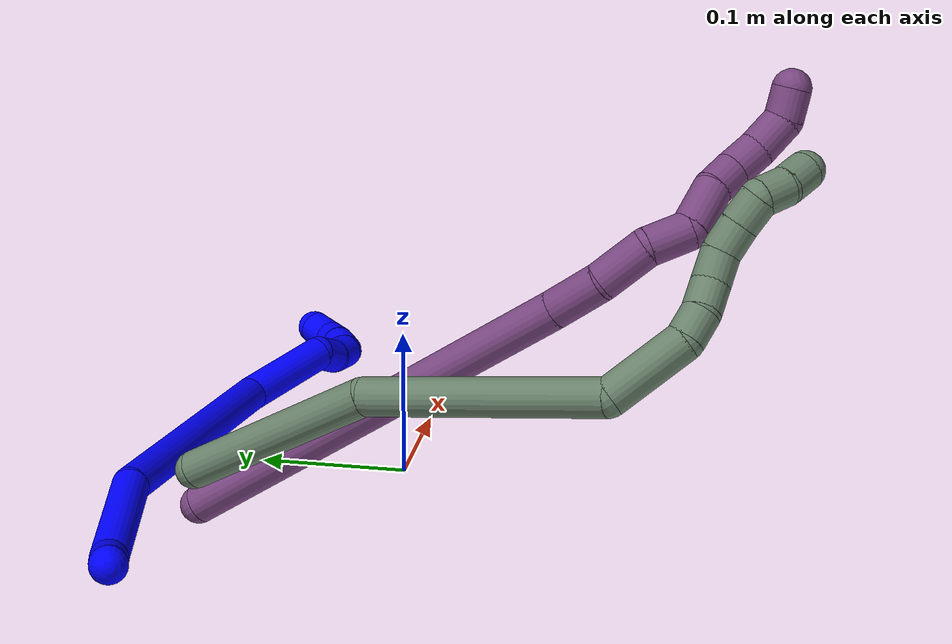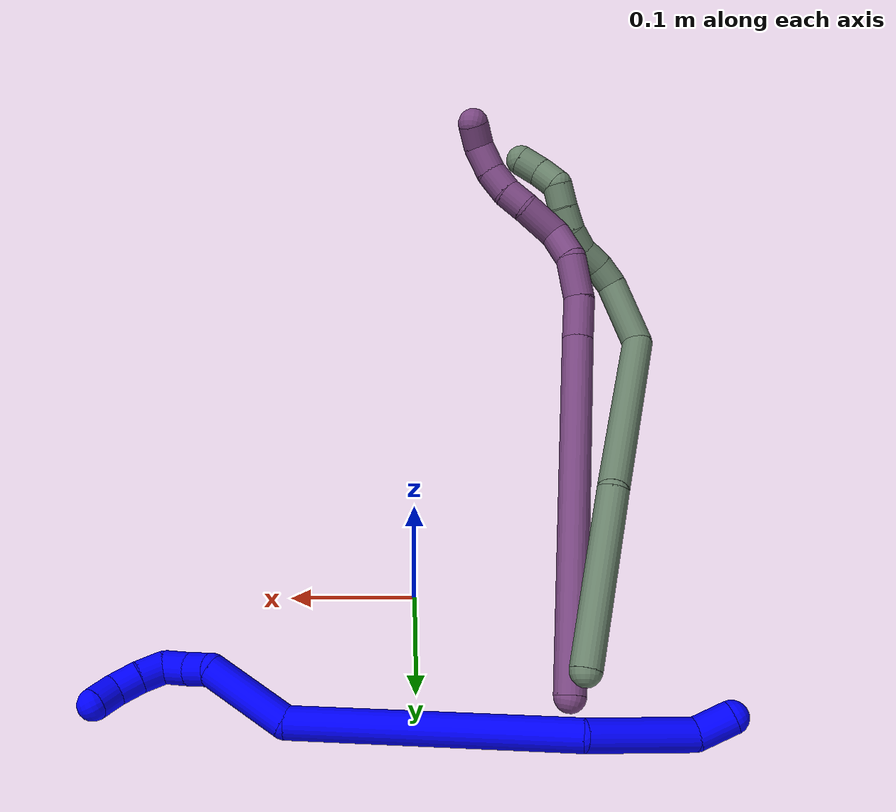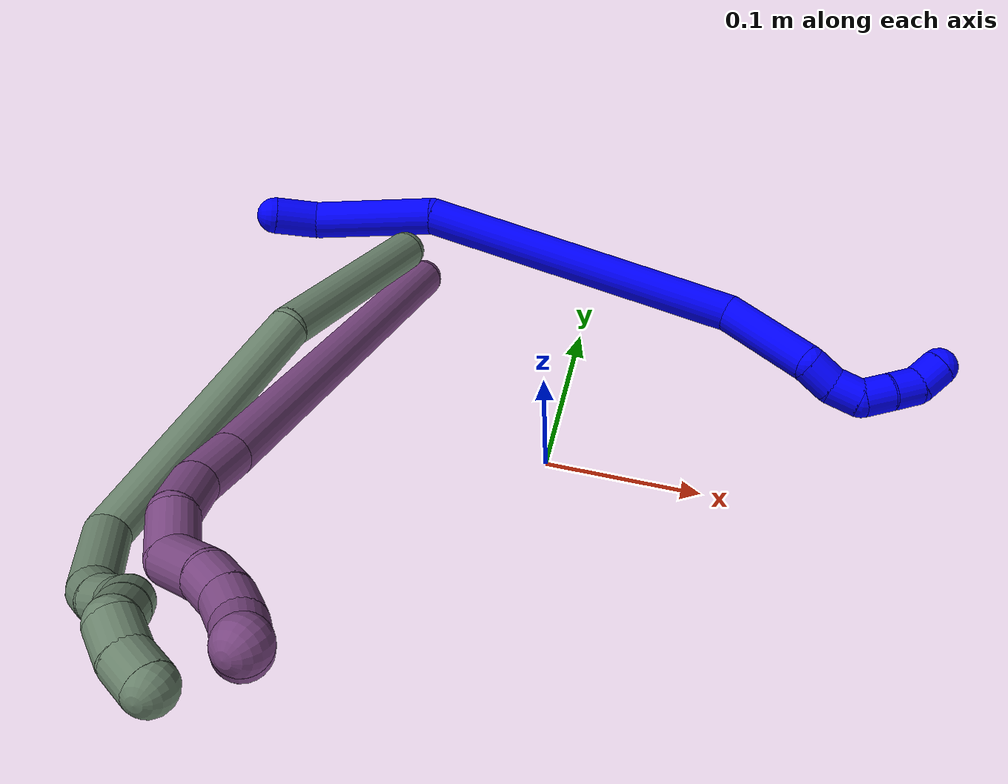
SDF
<sdf version="1.7">
 <world name="default">
  <model name="1">
   <static>0</static>
   <link name="1">
    <collision name="collision-cylinder-e_1_1_4">
     <pose>0.000406 -0.000487 -0.014796 3.10866 0.027416 1.38844</pose>
     <geometry><cylinder><radius>0.0125</radius><length>0.029619</length></cylinder></geometry>
     <surface>
      <friction><ode><mu>1.16</mu><mu2>1.16</mu2><slip1>0</slip1><slip2>0</slip2></ode></friction>
      <contact><ode><kp>1e+06</kp><kd>1</kd><max_vel>0</max_vel><min_depth>0.001</min_depth></ode></contact>
     </surface>
    </collision>
    <visual name="visual-cylinder-e_1_1_4">
     <pose>0.000406 -0.000487 -0.014796 3.10866 0.027416 1.38844</pose>
     <geometry><cylinder><radius>0.0125</radius><length>0.029619</length></cylinder></geometry>
     <material><ambient>0 0 1 1</ambient></material>
    </visual>
    <collision name="collision-cylinder-e_2_4_5">
     <pose>0.020417 0.004562 -0.066507 -2.99271 0.483622 -2.55431</pose>
     <geometry><cylinder><radius>0.0125</radius><length>0.084326</length></cylinder></geometry>
     <surface>
      <friction><ode><mu>1.16</mu><mu2>1.16</mu2><slip1>0</slip1><slip2>0</slip2></ode></friction>
      <contact><ode><kp>1e+06</kp><kd>1</kd><max_vel>0</max_vel><min_depth>0.001</min_depth></ode></contact>
     </surface>
    </collision>
    <visual name="visual-cylinder-e_2_4_5">
     <pose>0.020417 0.004562 -0.066507 -2.99271 0.483622 -2.55431</pose>
     <geometry><cylinder><radius>0.0125</radius><length>0.084326</length></cylinder></geometry>
     <material><ambient>0 0 1 1</ambient></material>
    </visual>
    <collision name="collision-cylinder-e_3_5_6">
     <pose>0.08765 -0.012303 -0.197232 2.90718 0.458686 2.20732</pose>
     <geometry><cylinder><radius>0.0125</radius><length>0.215134</length></cylinder></geometry>
     <surface>
      <friction><ode><mu>1.16</mu><mu2>1.16</mu2><slip1>0</slip1><slip2>0</slip2></ode></friction>
      <contact><ode><kp>1e+06</kp><kd>1</kd><max_vel>0</max_vel><min_depth>0.001</min_depth></ode></contact>
     </surface>
    </collision>
    <visual name="visual-cylinder-e_3_5_6">
     <pose>0.08765 -0.012303 -0.197232 2.90718 0.458686 2.20732</pose>
     <geometry><cylinder><radius>0.0125</radius><length>0.215134</length></cylinder></geometry>
     <material><ambient>0 0 1 1</ambient></material>
    </visual>
    <collision name="collision-cylinder-e_4_6_7">
     <pose>0.163222 -0.046512 -0.308187 2.53851 0.930559 2.03229</pose>
     <geometry><cylinder><radius>0.0125</radius><length>0.069691</length></cylinder></geometry>
     <surface>
      <friction><ode><mu>1.16</mu><mu2>1.16</mu2><slip1>0</slip1><slip2>0</slip2></ode></friction>
      <contact><ode><kp>1e+06</kp><kd>1</kd><max_vel>0</max_vel><min_depth>0.001</min_depth></ode></contact>
     </surface>
    </collision>
    <visual name="visual-cylinder-e_4_6_7">
     <pose>0.163222 -0.046512 -0.308187 2.53851 0.930559 2.03229</pose>
     <geometry><cylinder><radius>0.0125</radius><length>0.069691</length></cylinder></geometry>
     <material><ambient>0 0 1 1</ambient></material>
    </visual>
    <collision name="collision-cylinder-e_5_7_8">
     <pose>0.194168 -0.064505 -0.333002 2.46289 0.295678 0.798445</pose>
     <geometry><cylinder><radius>0.0125</radius><length>0.020603</length></cylinder></geometry>
     <surface>
      <friction><ode><mu>1.16</mu><mu2>1.16</mu2><slip1>0</slip1><slip2>0</slip2></ode></friction>
      <contact><ode><kp>1e+06</kp><kd>1</kd><max_vel>0</max_vel><min_depth>0.001</min_depth></ode></contact>
     </surface>
    </collision>
    <visual name="visual-cylinder-e_5_7_8">
     <pose>0.194168 -0.064505 -0.333002 2.46289 0.295678 0.798445</pose>
     <geometry><cylinder><radius>0.0125</radius><length>0.020603</length></cylinder></geometry>
     <material><ambient>0 0 1 1</ambient></material>
    </visual>
    <collision name="collision-cylinder-e_6_8_9">
     <pose>0.201821 -0.073927 -0.349221 2.77975 0.470676 1.83821</pose>
     <geometry><cylinder><radius>0.0125</radius><length>0.020512</length></cylinder></geometry>
     <surface>
      <friction><ode><mu>1.16</mu><mu2>1.16</mu2><slip1>0</slip1><slip2>0</slip2></ode></friction>
      <contact><ode><kp>1e+06</kp><kd>1</kd><max_vel>0</max_vel><min_depth>0.001</min_depth></ode></contact>
     </surface>
    </collision>
    <visual name="visual-cylinder-e_6_8_9">
     <pose>0.201821 -0.073927 -0.349221 2.77975 0.470676 1.83821</pose>
     <geometry><cylinder><radius>0.0125</radius><length>0.020512</length></cylinder></geometry>
     <material><ambient>0 0 1 1</ambient></material>
    </visual>
    <collision name="collision-cylinder-e_7_9_10">
     <pose>0.207519 -0.074418 -0.367369 -2.86305 0.104484 -0.71406</pose>
     <geometry><cylinder><radius>0.0125</radius><length>0.020077</length></cylinder></geometry>
     <surface>
      <friction><ode><mu>1.16</mu><mu2>1.16</mu2><slip1>0</slip1><slip2>0</slip2></ode></friction>
      <contact><ode><kp>1e+06</kp><kd>1</kd><max_vel>0</max_vel><min_depth>0.001</min_depth></ode></contact>
     </surface>
    </collision>
    <visual name="visual-cylinder-e_7_9_10">
     <pose>0.207519 -0.074418 -0.367369 -2.86305 0.104484 -0.71406</pose>
     <geometry><cylinder><radius>0.0125</radius><length>0.020077</length></cylinder></geometry>
     <material><ambient>0 0 1 1</ambient></material>
    </visual>
    <collision name="collision-cylinder-e_8_10_11">
     <pose>0.208477 -0.069186 -0.386668 -2.89065 -0.008925 0.070733</pose>
     <geometry><cylinder><radius>0.0125</radius><length>0.020028</length></cylinder></geometry>
     <surface>
      <friction><ode><mu>1.16</mu><mu2>1.16</mu2><slip1>0</slip1><slip2>0</slip2></ode></friction>
      <contact><ode><kp>1e+06</kp><kd>1</kd><max_vel>0</max_vel><min_depth>0.001</min_depth></ode></contact>
     </surface>
    </collision>
    <visual name="visual-cylinder-e_8_10_11">
     <pose>0.208477 -0.069186 -0.386668 -2.89065 -0.008925 0.070733</pose>
     <geometry><cylinder><radius>0.0125</radius><length>0.020028</length></cylinder></geometry>
     <material><ambient>0 0 1 1</ambient></material>
    </visual>
    <collision name="collision-cylinder-e_9_11_2">
     <pose>0.207745 -0.060261 -0.403998 -2.44067 -0.06426 0.175401</pose>
     <geometry><cylinder><radius>0.0125</radius><length>0.020009</length></cylinder></geometry>
     <surface>
      <friction><ode><mu>1.16</mu><mu2>1.16</mu2><slip1>0</slip1><slip2>0</slip2></ode></friction>
      <contact><ode><kp>1e+06</kp><kd>1</kd><max_vel>0</max_vel><min_depth>0.001</min_depth></ode></contact>
     </surface>
    </collision>
    <visual name="visual-cylinder-e_9_11_2">
     <pose>0.207745 -0.060261 -0.403998 -2.44067 -0.06426 0.175401</pose>
     <geometry><cylinder><radius>0.0125</radius><length>0.020009</length></cylinder></geometry>
     <material><ambient>0 0 1 1</ambient></material>
    </visual>
    <collision name="collision-sphere-2">
     <pose>0.207103 -0.053822 -0.411628 0 -0 0</pose>
     <geometry><sphere><radius>0.0125</radius></sphere></geometry>
     <surface>
      <friction><ode><mu>1.16</mu><mu2>1.16</mu2><slip1>0</slip1><slip2>0</slip2></ode></friction>
      <contact><ode><kp>1e+06</kp><kd>1</kd><max_vel>0</max_vel><min_depth>0.001</min_depth></ode></contact>
     </surface>
    </collision>
    <visual name="visual-sphere-2">
     <pose>0.207103 -0.053822 -0.411628 0 -0 0</pose>
     <geometry><sphere><radius>0.0125</radius></sphere></geometry>
     <material><ambient>0 0 1 1</ambient></material>
    </visual>
    <collision name="collision-sphere-11">
     <pose>0.208387 -0.0667 -0.396368 0 -0 0</pose>
     <geometry><sphere><radius>0.0125</radius></sphere></geometry>
     <surface>
      <friction><ode><mu>1.16</mu><mu2>1.16</mu2><slip1>0</slip1><slip2>0</slip2></ode></friction>
      <contact><ode><kp>1e+06</kp><kd>1</kd><max_vel>0</max_vel><min_depth>0.001</min_depth></ode></contact>
     </surface>
    </collision>
    <visual name="visual-sphere-11">
     <pose>0.208387 -0.0667 -0.396368 0 -0 0</pose>
     <geometry><sphere><radius>0.0125</radius></sphere></geometry>
     <material><ambient>0 0 1 1</ambient></material>
    </visual>
    <collision name="collision-sphere-10">
     <pose>0.208566 -0.071673 -0.376968 0 -0 0</pose>
     <geometry><sphere><radius>0.0125</radius></sphere></geometry>
     <surface>
      <friction><ode><mu>1.16</mu><mu2>1.16</mu2><slip1>0</slip1><slip2>0</slip2></ode></friction>
      <contact><ode><kp>1e+06</kp><kd>1</kd><max_vel>0</max_vel><min_depth>0.001</min_depth></ode></contact>
     </surface>
    </collision>
    <visual name="visual-sphere-10">
     <pose>0.208566 -0.071673 -0.376968 0 -0 0</pose>
     <geometry><sphere><radius>0.0125</radius></sphere></geometry>
     <material><ambient>0 0 1 1</ambient></material>
    </visual>
    <collision name="collision-sphere-9">
     <pose>0.206472 -0.077163 -0.35777 0 -0 0</pose>
     <geometry><sphere><radius>0.0125</radius></sphere></geometry>
     <surface>
      <friction><ode><mu>1.16</mu><mu2>1.16</mu2><slip1>0</slip1><slip2>0</slip2></ode></friction>
      <contact><ode><kp>1e+06</kp><kd>1</kd><max_vel>0</max_vel><min_depth>0.001</min_depth></ode></contact>
     </surface>
    </collision>
    <visual name="visual-sphere-9">
     <pose>0.206472 -0.077163 -0.35777 0 -0 0</pose>
     <geometry><sphere><radius>0.0125</radius></sphere></geometry>
     <material><ambient>0 0 1 1</ambient></material>
    </visual>
    <collision name="collision-sphere-4">
     <pose>0.000812 -0.000975 -0.029592 0 -0 0</pose>
     <geometry><sphere><radius>0.0125</radius></sphere></geometry>
     <surface>
      <friction><ode><mu>1.16</mu><mu2>1.16</mu2><slip1>0</slip1><slip2>0</slip2></ode></friction>
      <contact><ode><kp>1e+06</kp><kd>1</kd><max_vel>0</max_vel><min_depth>0.001</min_depth></ode></contact>
     </surface>
    </collision>
    <visual name="visual-sphere-4">
     <pose>0.000812 -0.000975 -0.029592 0 -0 0</pose>
     <geometry><sphere><radius>0.0125</radius></sphere></geometry>
     <material><ambient>0 0 1 1</ambient></material>
    </visual>
    <collision name="collision-sphere-1">
     <geometry><sphere><radius>0.0125</radius></sphere></geometry>
     <surface>
      <friction><ode><mu>1.16</mu><mu2>1.16</mu2><slip1>0</slip1><slip2>0</slip2></ode></friction>
      <contact><ode><kp>1e+06</kp><kd>1</kd><max_vel>0</max_vel><min_depth>0.001</min_depth></ode></contact>
     </surface>
    </collision>
    <visual name="visual-sphere-1">
     <geometry><sphere><radius>0.0125</radius></sphere></geometry>
     <material><ambient>0 0 1 1</ambient></material>
    </visual>
    <collision name="collision-sphere-8">
     <pose>0.19717 -0.070692 -0.340672 0 -0 0</pose>
     <geometry><sphere><radius>0.0125</radius></sphere></geometry>
     <surface>
      <friction><ode><mu>1.16</mu><mu2>1.16</mu2><slip1>0</slip1><slip2>0</slip2></ode></friction>
      <contact><ode><kp>1e+06</kp><kd>1</kd><max_vel>0</max_vel><min_depth>0.001</min_depth></ode></contact>
     </surface>
    </collision>
    <visual name="visual-sphere-8">
     <pose>0.19717 -0.070692 -0.340672 0 -0 0</pose>
     <geometry><sphere><radius>0.0125</radius></sphere></geometry>
     <material><ambient>0 0 1 1</ambient></material>
    </visual>
    <collision name="collision-sphere-5">
     <pose>0.040023 0.010099 -0.103422 0 -0 0</pose>
     <geometry><sphere><radius>0.0125</radius></sphere></geometry>
     <surface>
      <friction><ode><mu>1.16</mu><mu2>1.16</mu2><slip1>0</slip1><slip2>0</slip2></ode></friction>
      <contact><ode><kp>1e+06</kp><kd>1</kd><max_vel>0</max_vel><min_depth>0.001</min_depth></ode></contact>
     </surface>
    </collision>
    <visual name="visual-sphere-5">
     <pose>0.040023 0.010099 -0.103422 0 -0 0</pose>
     <geometry><sphere><radius>0.0125</radius></sphere></geometry>
     <material><ambient>0 0 1 1</ambient></material>
    </visual>
    <collision name="collision-sphere-6">
     <pose>0.135278 -0.034705 -0.291043 0 -0 0</pose>
     <geometry><sphere><radius>0.0125</radius></sphere></geometry>
     <surface>
      <friction><ode><mu>1.16</mu><mu2>1.16</mu2><slip1>0</slip1><slip2>0</slip2></ode></friction>
      <contact><ode><kp>1e+06</kp><kd>1</kd><max_vel>0</max_vel><min_depth>0.001</min_depth></ode></contact>
     </surface>
    </collision>
    <visual name="visual-sphere-6">
     <pose>0.135278 -0.034705 -0.291043 0 -0 0</pose>
     <geometry><sphere><radius>0.0125</radius></sphere></geometry>
     <material><ambient>0 0 1 1</ambient></material>
    </visual>
    <collision name="collision-sphere-7">
     <pose>0.191167 -0.058318 -0.325331 0 -0 0</pose>
     <geometry><sphere><radius>0.0125</radius></sphere></geometry>
     <surface>
      <friction><ode><mu>1.16</mu><mu2>1.16</mu2><slip1>0</slip1><slip2>0</slip2></ode></friction>
      <contact><ode><kp>1e+06</kp><kd>1</kd><max_vel>0</max_vel><min_depth>0.001</min_depth></ode></contact>
     </surface>
    </collision>
    <visual name="visual-sphere-7">
     <pose>0.191167 -0.058318 -0.325331 0 -0 0</pose>
     <geometry><sphere><radius>0.0125</radius></sphere></geometry>
     <material><ambient>0 0 1 1</ambient></material>
    </visual>
    <inertial>
     <pose>0.105208 -0.024898 -0.214367 0 -0 0</pose>
     <mass>0.5</mass>
     <inertia>
      <ixx>0.000127</ixx>
      <ixy>0</ixy>
      <ixz>0</ixz>
      <iyy>0.001215</iyy>
      <iyz>0</iyz>
      <izz>-0.000276</izz>
     </inertia>
    </inertial>
   </link>
   <pose>-0.227113 0.139582 0.020349 1.16789 -0.779089 -0.92576</pose>
  </model>
  <model name="17">
   <static>0</static>
   <link name="17">
    <collision name="collision-cylinder-e_1_1_4">
     <pose>-0.004558 -0.010582 0.069242 0.151652 -0.064986 -0.004939</pose>
     <geometry><cylinder><radius>0.0125</radius><length>0.140389</length></cylinder></geometry>
     <surface>
      <friction><ode><mu>1.16</mu><mu2>1.16</mu2><slip1>0</slip1><slip2>0</slip2></ode></friction>
      <contact><ode><kp>1e+06</kp><kd>1</kd><max_vel>0</max_vel><min_depth>0.001</min_depth></ode></contact>
     </surface>
    </collision>
    <visual name="visual-cylinder-e_1_1_4">
     <pose>-0.004558 -0.010582 0.069242 0.151652 -0.064986 -0.004939</pose>
     <geometry><cylinder><radius>0.0125</radius><length>0.140389</length></cylinder></geometry>
     <material><ambient>0.415686 0.509804 0.423529 1</ambient></material>
    </visual>
    <collision name="collision-cylinder-e_2_4_5">
     <pose>0.004188 -0.055308 0.21151 0.43736 0.163574 0.036429</pose>
     <geometry><cylinder><radius>0.0125</radius><length>0.163408</length></cylinder></geometry>
     <surface>
      <friction><ode><mu>1.16</mu><mu2>1.16</mu2><slip1>0</slip1><slip2>0</slip2></ode></friction>
      <contact><ode><kp>1e+06</kp><kd>1</kd><max_vel>0</max_vel><min_depth>0.001</min_depth></ode></contact>
     </surface>
    </collision>
    <visual name="visual-cylinder-e_2_4_5">
     <pose>0.004188 -0.055308 0.21151 0.43736 0.163574 0.036429</pose>
     <geometry><cylinder><radius>0.0125</radius><length>0.163408</length></cylinder></geometry>
     <material><ambient>0.415686 0.509804 0.423529 1</ambient></material>
    </visual>
    <collision name="collision-cylinder-e_3_5_6">
     <pose>0.024061 -0.080374 0.310231 -0.339599 0.2365 -0.040732</pose>
     <geometry><cylinder><radius>0.0125</radius><length>0.056064</length></cylinder></geometry>
     <surface>
      <friction><ode><mu>1.16</mu><mu2>1.16</mu2><slip1>0</slip1><slip2>0</slip2></ode></friction>
      <contact><ode><kp>1e+06</kp><kd>1</kd><max_vel>0</max_vel><min_depth>0.001</min_depth></ode></contact>
     </surface>
    </collision>
    <visual name="visual-cylinder-e_3_5_6">
     <pose>0.024061 -0.080374 0.310231 -0.339599 0.2365 -0.040732</pose>
     <geometry><cylinder><radius>0.0125</radius><length>0.056064</length></cylinder></geometry>
     <material><ambient>0.415686 0.509804 0.423529 1</ambient></material>
    </visual>
    <collision name="collision-cylinder-e_4_6_7">
     <pose>0.03245 -0.064311 0.342862 -0.788989 0.182872 -0.076309</pose>
     <geometry><cylinder><radius>0.0125</radius><length>0.02002</length></cylinder></geometry>
     <surface>
      <friction><ode><mu>1.16</mu><mu2>1.16</mu2><slip1>0</slip1><slip2>0</slip2></ode></friction>
      <contact><ode><kp>1e+06</kp><kd>1</kd><max_vel>0</max_vel><min_depth>0.001</min_depth></ode></contact>
     </surface>
    </collision>
    <visual name="visual-cylinder-e_4_6_7">
     <pose>0.03245 -0.064311 0.342862 -0.788989 0.182872 -0.076309</pose>
     <geometry><cylinder><radius>0.0125</radius><length>0.02002</length></cylinder></geometry>
     <material><ambient>0.415686 0.509804 0.423529 1</ambient></material>
    </visual>
    <collision name="collision-cylinder-e_5_7_8">
     <pose>0.03631 -0.048779 0.35463 -1.05616 0.204843 -0.11977</pose>
     <geometry><cylinder><radius>0.0125</radius><length>0.020058</length></cylinder></geometry>
     <surface>
      <friction><ode><mu>1.16</mu><mu2>1.16</mu2><slip1>0</slip1><slip2>0</slip2></ode></friction>
      <contact><ode><kp>1e+06</kp><kd>1</kd><max_vel>0</max_vel><min_depth>0.001</min_depth></ode></contact>
     </surface>
    </collision>
    <visual name="visual-cylinder-e_5_7_8">
     <pose>0.03631 -0.048779 0.35463 -1.05616 0.204843 -0.11977</pose>
     <geometry><cylinder><radius>0.0125</radius><length>0.020058</length></cylinder></geometry>
     <material><ambient>0.415686 0.509804 0.423529 1</ambient></material>
    </visual>
    <collision name="collision-cylinder-e_6_8_9">
     <pose>0.037951 -0.032461 0.365787 -0.887601 -0.039783 0.018916</pose>
     <geometry><cylinder><radius>0.0125</radius><length>0.020053</length></cylinder></geometry>
     <surface>
      <friction><ode><mu>1.16</mu><mu2>1.16</mu2><slip1>0</slip1><slip2>0</slip2></ode></friction>
      <contact><ode><kp>1e+06</kp><kd>1</kd><max_vel>0</max_vel><min_depth>0.001</min_depth></ode></contact>
     </surface>
    </collision>
    <visual name="visual-cylinder-e_6_8_9">
     <pose>0.037951 -0.032461 0.365787 -0.887601 -0.039783 0.018916</pose>
     <geometry><cylinder><radius>0.0125</radius><length>0.020053</length></cylinder></geometry>
     <material><ambient>0.415686 0.509804 0.423529 1</ambient></material>
    </visual>
    <collision name="collision-cylinder-e_7_9_10">
     <pose>0.037128 -0.019308 0.380531 -0.568936 -0.042431 0.012408</pose>
     <geometry><cylinder><radius>0.0125</radius><length>0.020005</length></cylinder></geometry>
     <surface>
      <friction><ode><mu>1.16</mu><mu2>1.16</mu2><slip1>0</slip1><slip2>0</slip2></ode></friction>
      <contact><ode><kp>1e+06</kp><kd>1</kd><max_vel>0</max_vel><min_depth>0.001</min_depth></ode></contact>
     </surface>
    </collision>
    <visual name="visual-cylinder-e_7_9_10">
     <pose>0.037128 -0.019308 0.380531 -0.568936 -0.042431 0.012408</pose>
     <geometry><cylinder><radius>0.0125</radius><length>0.020005</length></cylinder></geometry>
     <material><ambient>0.415686 0.509804 0.423529 1</ambient></material>
    </visual>
    <collision name="collision-cylinder-e_8_10_11">
     <pose>0.036153 -0.009403 0.397854 -0.469823 -0.055166 0.013206</pose>
     <geometry><cylinder><radius>0.0125</radius><length>0.020003</length></cylinder></geometry>
     <surface>
      <friction><ode><mu>1.16</mu><mu2>1.16</mu2><slip1>0</slip1><slip2>0</slip2></ode></friction>
      <contact><ode><kp>1e+06</kp><kd>1</kd><max_vel>0</max_vel><min_depth>0.001</min_depth></ode></contact>
     </surface>
    </collision>
    <visual name="visual-cylinder-e_8_10_11">
     <pose>0.036153 -0.009403 0.397854 -0.469823 -0.055166 0.013206</pose>
     <geometry><cylinder><radius>0.0125</radius><length>0.020003</length></cylinder></geometry>
     <material><ambient>0.415686 0.509804 0.423529 1</ambient></material>
    </visual>
    <collision name="collision-cylinder-e_9_11_12">
     <pose>0.041999 -0.001371 0.413596 -0.474323 0.694134 -0.174414</pose>
     <geometry><cylinder><radius>0.0125</radius><length>0.020001</length></cylinder></geometry>
     <surface>
      <friction><ode><mu>1.16</mu><mu2>1.16</mu2><slip1>0</slip1><slip2>0</slip2></ode></friction>
      <contact><ode><kp>1e+06</kp><kd>1</kd><max_vel>0</max_vel><min_depth>0.001</min_depth></ode></contact>
     </surface>
    </collision>
    <visual name="visual-cylinder-e_9_11_12">
     <pose>0.041999 -0.001371 0.413596 -0.474323 0.694134 -0.174414</pose>
     <geometry><cylinder><radius>0.0125</radius><length>0.020001</length></cylinder></geometry>
     <material><ambient>0.415686 0.509804 0.423529 1</ambient></material>
    </visual>
    <collision name="collision-cylinder-e_10_12_2">
     <pose>0.05449 0.007759 0.426027 -0.787692 0.655323 -0.280651</pose>
     <geometry><cylinder><radius>0.0125</radius><length>0.02</length></cylinder></geometry>
     <surface>
      <friction><ode><mu>1.16</mu><mu2>1.16</mu2><slip1>0</slip1><slip2>0</slip2></ode></friction>
      <contact><ode><kp>1e+06</kp><kd>1</kd><max_vel>0</max_vel><min_depth>0.001</min_depth></ode></contact>
     </surface>
    </collision>
    <visual name="visual-cylinder-e_10_12_2">
     <pose>0.05449 0.007759 0.426027 -0.787692 0.655323 -0.280651</pose>
     <geometry><cylinder><radius>0.0125</radius><length>0.02</length></cylinder></geometry>
     <material><ambient>0.415686 0.509804 0.423529 1</ambient></material>
    </visual>
    <collision name="collision-sphere-2">
     <pose>0.060584 0.013378 0.431621 0 -0 0</pose>
     <geometry><sphere><radius>0.0125</radius></sphere></geometry>
     <surface>
      <friction><ode><mu>1.16</mu><mu2>1.16</mu2><slip1>0</slip1><slip2>0</slip2></ode></friction>
      <contact><ode><kp>1e+06</kp><kd>1</kd><max_vel>0</max_vel><min_depth>0.001</min_depth></ode></contact>
     </surface>
    </collision>
    <visual name="visual-sphere-2">
     <pose>0.060584 0.013378 0.431621 0 -0 0</pose>
     <geometry><sphere><radius>0.0125</radius></sphere></geometry>
     <material><ambient>0.415686 0.509804 0.423529 1</ambient></material>
    </visual>
    <collision name="collision-sphere-12">
     <pose>0.048396 0.00214 0.420434 0 -0 0</pose>
     <geometry><sphere><radius>0.0125</radius></sphere></geometry>
     <surface>
      <friction><ode><mu>1.16</mu><mu2>1.16</mu2><slip1>0</slip1><slip2>0</slip2></ode></friction>
      <contact><ode><kp>1e+06</kp><kd>1</kd><max_vel>0</max_vel><min_depth>0.001</min_depth></ode></contact>
     </surface>
    </collision>
    <visual name="visual-sphere-12">
     <pose>0.048396 0.00214 0.420434 0 -0 0</pose>
     <geometry><sphere><radius>0.0125</radius></sphere></geometry>
     <material><ambient>0.415686 0.509804 0.423529 1</ambient></material>
    </visual>
    <collision name="collision-sphere-11">
     <pose>0.035601 -0.004882 0.406758 0 -0 0</pose>
     <geometry><sphere><radius>0.0125</radius></sphere></geometry>
     <surface>
      <friction><ode><mu>1.16</mu><mu2>1.16</mu2><slip1>0</slip1><slip2>0</slip2></ode></friction>
      <contact><ode><kp>1e+06</kp><kd>1</kd><max_vel>0</max_vel><min_depth>0.001</min_depth></ode></contact>
     </surface>
    </collision>
    <visual name="visual-sphere-11">
     <pose>0.035601 -0.004882 0.406758 0 -0 0</pose>
     <geometry><sphere><radius>0.0125</radius></sphere></geometry>
     <material><ambient>0.415686 0.509804 0.423529 1</ambient></material>
    </visual>
    <collision name="collision-sphere-10">
     <pose>0.036704 -0.013924 0.38895 0 -0 0</pose>
     <geometry><sphere><radius>0.0125</radius></sphere></geometry>
     <surface>
      <friction><ode><mu>1.16</mu><mu2>1.16</mu2><slip1>0</slip1><slip2>0</slip2></ode></friction>
      <contact><ode><kp>1e+06</kp><kd>1</kd><max_vel>0</max_vel><min_depth>0.001</min_depth></ode></contact>
     </surface>
    </collision>
    <visual name="visual-sphere-10">
     <pose>0.036704 -0.013924 0.38895 0 -0 0</pose>
     <geometry><sphere><radius>0.0125</radius></sphere></geometry>
     <material><ambient>0.415686 0.509804 0.423529 1</ambient></material>
    </visual>
    <collision name="collision-sphere-9">
     <pose>0.037553 -0.024691 0.372112 0 -0 0</pose>
     <geometry><sphere><radius>0.0125</radius></sphere></geometry>
     <surface>
      <friction><ode><mu>1.16</mu><mu2>1.16</mu2><slip1>0</slip1><slip2>0</slip2></ode></friction>
      <contact><ode><kp>1e+06</kp><kd>1</kd><max_vel>0</max_vel><min_depth>0.001</min_depth></ode></contact>
     </surface>
    </collision>
    <visual name="visual-sphere-9">
     <pose>0.037553 -0.024691 0.372112 0 -0 0</pose>
     <geometry><sphere><radius>0.0125</radius></sphere></geometry>
     <material><ambient>0.415686 0.509804 0.423529 1</ambient></material>
    </visual>
    <collision name="collision-sphere-4">
     <pose>-0.009117 -0.021164 0.138485 0 -0 0</pose>
     <geometry><sphere><radius>0.0125</radius></sphere></geometry>
     <surface>
      <friction><ode><mu>1.16</mu><mu2>1.16</mu2><slip1>0</slip1><slip2>0</slip2></ode></friction>
      <contact><ode><kp>1e+06</kp><kd>1</kd><max_vel>0</max_vel><min_depth>0.001</min_depth></ode></contact>
     </surface>
    </collision>
    <visual name="visual-sphere-4">
     <pose>-0.009117 -0.021164 0.138485 0 -0 0</pose>
     <geometry><sphere><radius>0.0125</radius></sphere></geometry>
     <material><ambient>0.415686 0.509804 0.423529 1</ambient></material>
    </visual>
    <collision name="collision-sphere-1">
     <geometry><sphere><radius>0.0125</radius></sphere></geometry>
     <surface>
      <friction><ode><mu>1.16</mu><mu2>1.16</mu2><slip1>0</slip1><slip2>0</slip2></ode></friction>
      <contact><ode><kp>1e+06</kp><kd>1</kd><max_vel>0</max_vel><min_depth>0.001</min_depth></ode></contact>
     </surface>
    </collision>
    <visual name="visual-sphere-1">
     <geometry><sphere><radius>0.0125</radius></sphere></geometry>
     <material><ambient>0.415686 0.509804 0.423529 1</ambient></material>
    </visual>
    <collision name="collision-sphere-8">
     <pose>0.03835 -0.040231 0.359463 0 -0 0</pose>
     <geometry><sphere><radius>0.0125</radius></sphere></geometry>
     <surface>
      <friction><ode><mu>1.16</mu><mu2>1.16</mu2><slip1>0</slip1><slip2>0</slip2></ode></friction>
      <contact><ode><kp>1e+06</kp><kd>1</kd><max_vel>0</max_vel><min_depth>0.001</min_depth></ode></contact>
     </surface>
    </collision>
    <visual name="visual-sphere-8">
     <pose>0.03835 -0.040231 0.359463 0 -0 0</pose>
     <geometry><sphere><radius>0.0125</radius></sphere></geometry>
     <material><ambient>0.415686 0.509804 0.423529 1</ambient></material>
    </visual>
    <collision name="collision-sphere-5">
     <pose>0.017493 -0.089452 0.284536 0 -0 0</pose>
     <geometry><sphere><radius>0.0125</radius></sphere></geometry>
     <surface>
      <friction><ode><mu>1.16</mu><mu2>1.16</mu2><slip1>0</slip1><slip2>0</slip2></ode></friction>
      <contact><ode><kp>1e+06</kp><kd>1</kd><max_vel>0</max_vel><min_depth>0.001</min_depth></ode></contact>
     </surface>
    </collision>
    <visual name="visual-sphere-5">
     <pose>0.017493 -0.089452 0.284536 0 -0 0</pose>
     <geometry><sphere><radius>0.0125</radius></sphere></geometry>
     <material><ambient>0.415686 0.509804 0.423529 1</ambient></material>
    </visual>
    <collision name="collision-sphere-6">
     <pose>0.030629 -0.071296 0.335927 0 -0 0</pose>
     <geometry><sphere><radius>0.0125</radius></sphere></geometry>
     <surface>
      <friction><ode><mu>1.16</mu><mu2>1.16</mu2><slip1>0</slip1><slip2>0</slip2></ode></friction>
      <contact><ode><kp>1e+06</kp><kd>1</kd><max_vel>0</max_vel><min_depth>0.001</min_depth></ode></contact>
     </surface>
    </collision>
    <visual name="visual-sphere-6">
     <pose>0.030629 -0.071296 0.335927 0 -0 0</pose>
     <geometry><sphere><radius>0.0125</radius></sphere></geometry>
     <material><ambient>0.415686 0.509804 0.423529 1</ambient></material>
    </visual>
    <collision name="collision-sphere-7">
     <pose>0.03427 -0.057326 0.349797 0 -0 0</pose>
     <geometry><sphere><radius>0.0125</radius></sphere></geometry>
     <surface>
      <friction><ode><mu>1.16</mu><mu2>1.16</mu2><slip1>0</slip1><slip2>0</slip2></ode></friction>
      <contact><ode><kp>1e+06</kp><kd>1</kd><max_vel>0</max_vel><min_depth>0.001</min_depth></ode></contact>
     </surface>
    </collision>
    <visual name="visual-sphere-7">
     <pose>0.03427 -0.057326 0.349797 0 -0 0</pose>
     <geometry><sphere><radius>0.0125</radius></sphere></geometry>
     <material><ambient>0.415686 0.509804 0.423529 1</ambient></material>
    </visual>
    <inertial>
     <pose>0.013856 -0.036786 0.230704 0 -0 0</pose>
     <mass>0.5</mass>
     <inertia>
      <ixx>0.000642</ixx>
      <ixy>0</ixy>
      <ixz>0</ixz>
      <iyy>0.000605</iyy>
      <iyz>0</iyz>
      <izz>0.000161</izz>
     </inertia>
    </inertial>
   </link>
   <pose>-0.122896 0.11383 0.042648 0.819135 0.625074 -0.563851</pose>
  </model>
  <model name="20">
   <static>0</static>
   <link name="20">
    <collision name="collision-cylinder-e_1_1_4">
     <pose>0.003711 -0.020152 0.13988 0.143085 0.026255 0.001882</pose>
     <geometry><cylinder><radius>0.0125</radius><length>0.282745</length></cylinder></geometry>
     <surface>
      <friction><ode><mu>1.16</mu><mu2>1.16</mu2><slip1>0</slip1><slip2>0</slip2></ode></friction>
      <contact><ode><kp>1e+06</kp><kd>1</kd><max_vel>0</max_vel><min_depth>0.001</min_depth></ode></contact>
     </surface>
    </collision>
    <visual name="visual-cylinder-e_1_1_4">
     <pose>0.003711 -0.020152 0.13988 0.143085 0.026255 0.001882</pose>
     <geometry><cylinder><radius>0.0125</radius><length>0.282745</length></cylinder></geometry>
     <material><ambient>0.478431 0.278431 0.509804 1</ambient></material>
    </visual>
    <collision name="collision-cylinder-e_2_4_5">
     <pose>0.008391 -0.042435 0.296995 0.122988 0.055707 0.003431</pose>
     <geometry><cylinder><radius>0.0125</radius><length>0.034788</length></cylinder></geometry>
     <surface>
      <friction><ode><mu>1.16</mu><mu2>1.16</mu2><slip1>0</slip1><slip2>0</slip2></ode></friction>
      <contact><ode><kp>1e+06</kp><kd>1</kd><max_vel>0</max_vel><min_depth>0.001</min_depth></ode></contact>
     </surface>
    </collision>
    <visual name="visual-cylinder-e_2_4_5">
     <pose>0.008391 -0.042435 0.296995 0.122988 0.055707 0.003431</pose>
     <geometry><cylinder><radius>0.0125</radius><length>0.034788</length></cylinder></geometry>
     <material><ambient>0.478431 0.278431 0.509804 1</ambient></material>
    </visual>
    <collision name="collision-cylinder-e_3_5_6">
     <pose>0.01269 -0.050026 0.330536 0.32314 0.191345 0.031281</pose>
     <geometry><cylinder><radius>0.0125</radius><length>0.03503</length></cylinder></geometry>
     <surface>
      <friction><ode><mu>1.16</mu><mu2>1.16</mu2><slip1>0</slip1><slip2>0</slip2></ode></friction>
      <contact><ode><kp>1e+06</kp><kd>1</kd><max_vel>0</max_vel><min_depth>0.001</min_depth></ode></contact>
     </surface>
    </collision>
    <visual name="visual-cylinder-e_3_5_6">
     <pose>0.01269 -0.050026 0.330536 0.32314 0.191345 0.031281</pose>
     <geometry><cylinder><radius>0.0125</radius><length>0.03503</length></cylinder></geometry>
     <material><ambient>0.478431 0.278431 0.509804 1</ambient></material>
    </visual>
    <collision name="collision-cylinder-e_4_6_7">
     <pose>0.015489 -0.064212 0.357798 0.672514 -0.037966 -0.013272</pose>
     <geometry><cylinder><radius>0.0125</radius><length>0.028033</length></cylinder></geometry>
     <surface>
      <friction><ode><mu>1.16</mu><mu2>1.16</mu2><slip1>0</slip1><slip2>0</slip2></ode></friction>
      <contact><ode><kp>1e+06</kp><kd>1</kd><max_vel>0</max_vel><min_depth>0.001</min_depth></ode></contact>
     </surface>
    </collision>
    <visual name="visual-cylinder-e_4_6_7">
     <pose>0.015489 -0.064212 0.357798 0.672514 -0.037966 -0.013272</pose>
     <geometry><cylinder><radius>0.0125</radius><length>0.028033</length></cylinder></geometry>
     <material><ambient>0.478431 0.278431 0.509804 1</ambient></material>
    </visual>
    <collision name="collision-cylinder-e_5_7_8">
     <pose>0.024193 -0.084911 0.37593 1.03094 0.584489 0.337664</pose>
     <geometry><cylinder><radius>0.0125</radius><length>0.033475</length></cylinder></geometry>
     <surface>
      <friction><ode><mu>1.16</mu><mu2>1.16</mu2><slip1>0</slip1><slip2>0</slip2></ode></friction>
      <contact><ode><kp>1e+06</kp><kd>1</kd><max_vel>0</max_vel><min_depth>0.001</min_depth></ode></contact>
     </surface>
    </collision>
    <visual name="visual-cylinder-e_5_7_8">
     <pose>0.024193 -0.084911 0.37593 1.03094 0.584489 0.337664</pose>
     <geometry><cylinder><radius>0.0125</radius><length>0.033475</length></cylinder></geometry>
     <material><ambient>0.478431 0.278431 0.509804 1</ambient></material>
    </visual>
    <collision name="collision-cylinder-e_6_8_9">
     <pose>0.036659 -0.104961 0.388078 1.01891 0.328315 0.184552</pose>
     <geometry><cylinder><radius>0.0125</radius><length>0.020039</length></cylinder></geometry>
     <surface>
      <friction><ode><mu>1.16</mu><mu2>1.16</mu2><slip1>0</slip1><slip2>0</slip2></ode></friction>
      <contact><ode><kp>1e+06</kp><kd>1</kd><max_vel>0</max_vel><min_depth>0.001</min_depth></ode></contact>
     </surface>
    </collision>
    <visual name="visual-cylinder-e_6_8_9">
     <pose>0.036659 -0.104961 0.388078 1.01891 0.328315 0.184552</pose>
     <geometry><cylinder><radius>0.0125</radius><length>0.020039</length></cylinder></geometry>
     <material><ambient>0.478431 0.278431 0.509804 1</ambient></material>
    </visual>
    <collision name="collision-cylinder-e_7_9_10">
     <pose>0.04301 -0.12031 0.400245 0.79084 0.296052 0.124324</pose>
     <geometry><cylinder><radius>0.0125</radius><length>0.02139</length></cylinder></geometry>
     <surface>
      <friction><ode><mu>1.16</mu><mu2>1.16</mu2><slip1>0</slip1><slip2>0</slip2></ode></friction>
      <contact><ode><kp>1e+06</kp><kd>1</kd><max_vel>0</max_vel><min_depth>0.001</min_depth></ode></contact>
     </surface>
    </collision>
    <visual name="visual-cylinder-e_7_9_10">
     <pose>0.04301 -0.12031 0.400245 0.79084 0.296052 0.124324</pose>
     <geometry><cylinder><radius>0.0125</radius><length>0.02139</length></cylinder></geometry>
     <material><ambient>0.478431 0.278431 0.509804 1</ambient></material>
    </visual>
    <collision name="collision-cylinder-e_8_10_11">
     <pose>0.050871 -0.133626 0.416958 0.565639 0.39804 0.117092</pose>
     <geometry><cylinder><radius>0.0125</radius><length>0.024463</length></cylinder></geometry>
     <surface>
      <friction><ode><mu>1.16</mu><mu2>1.16</mu2><slip1>0</slip1><slip2>0</slip2></ode></friction>
      <contact><ode><kp>1e+06</kp><kd>1</kd><max_vel>0</max_vel><min_depth>0.001</min_depth></ode></contact>
     </surface>
    </collision>
    <visual name="visual-cylinder-e_8_10_11">
     <pose>0.050871 -0.133626 0.416958 0.565639 0.39804 0.117092</pose>
     <geometry><cylinder><radius>0.0125</radius><length>0.024463</length></cylinder></geometry>
     <material><ambient>0.478431 0.278431 0.509804 1</ambient></material>
    </visual>
    <collision name="collision-cylinder-e_9_11_2">
     <pose>0.063194 -0.14115 0.432856 0.228125 0.858408 0.104763</pose>
     <geometry><cylinder><radius>0.0125</radius><length>0.020036</length></cylinder></geometry>
     <surface>
      <friction><ode><mu>1.16</mu><mu2>1.16</mu2><slip1>0</slip1><slip2>0</slip2></ode></friction>
      <contact><ode><kp>1e+06</kp><kd>1</kd><max_vel>0</max_vel><min_depth>0.001</min_depth></ode></contact>
     </surface>
    </collision>
    <visual name="visual-cylinder-e_9_11_2">
     <pose>0.063194 -0.14115 0.432856 0.228125 0.858408 0.104763</pose>
     <geometry><cylinder><radius>0.0125</radius><length>0.020036</length></cylinder></geometry>
     <material><ambient>0.478431 0.278431 0.509804 1</ambient></material>
    </visual>
    <collision name="collision-sphere-2">
     <pose>0.070776 -0.142631 0.439234 0 -0 0</pose>
     <geometry><sphere><radius>0.0125</radius></sphere></geometry>
     <surface>
      <friction><ode><mu>1.16</mu><mu2>1.16</mu2><slip1>0</slip1><slip2>0</slip2></ode></friction>
      <contact><ode><kp>1e+06</kp><kd>1</kd><max_vel>0</max_vel><min_depth>0.001</min_depth></ode></contact>
     </surface>
    </collision>
    <visual name="visual-sphere-2">
     <pose>0.070776 -0.142631 0.439234 0 -0 0</pose>
     <geometry><sphere><radius>0.0125</radius></sphere></geometry>
     <material><ambient>0.478431 0.278431 0.509804 1</ambient></material>
    </visual>
    <collision name="collision-sphere-11">
     <pose>0.055613 -0.139669 0.426477 0 -0 0</pose>
     <geometry><sphere><radius>0.0125</radius></sphere></geometry>
     <surface>
      <friction><ode><mu>1.16</mu><mu2>1.16</mu2><slip1>0</slip1><slip2>0</slip2></ode></friction>
      <contact><ode><kp>1e+06</kp><kd>1</kd><max_vel>0</max_vel><min_depth>0.001</min_depth></ode></contact>
     </surface>
    </collision>
    <visual name="visual-sphere-11">
     <pose>0.055613 -0.139669 0.426477 0 -0 0</pose>
     <geometry><sphere><radius>0.0125</radius></sphere></geometry>
     <material><ambient>0.478431 0.278431 0.509804 1</ambient></material>
    </visual>
    <collision name="collision-sphere-10">
     <pose>0.04613 -0.127583 0.407439 0 -0 0</pose>
     <geometry><sphere><radius>0.0125</radius></sphere></geometry>
     <surface>
      <friction><ode><mu>1.16</mu><mu2>1.16</mu2><slip1>0</slip1><slip2>0</slip2></ode></friction>
      <contact><ode><kp>1e+06</kp><kd>1</kd><max_vel>0</max_vel><min_depth>0.001</min_depth></ode></contact>
     </surface>
    </collision>
    <visual name="visual-sphere-10">
     <pose>0.04613 -0.127583 0.407439 0 -0 0</pose>
     <geometry><sphere><radius>0.0125</radius></sphere></geometry>
     <material><ambient>0.478431 0.278431 0.509804 1</ambient></material>
    </visual>
    <collision name="collision-sphere-9">
     <pose>0.03989 -0.113038 0.393051 0 -0 0</pose>
     <geometry><sphere><radius>0.0125</radius></sphere></geometry>
     <surface>
      <friction><ode><mu>1.16</mu><mu2>1.16</mu2><slip1>0</slip1><slip2>0</slip2></ode></friction>
      <contact><ode><kp>1e+06</kp><kd>1</kd><max_vel>0</max_vel><min_depth>0.001</min_depth></ode></contact>
     </surface>
    </collision>
    <visual name="visual-sphere-9">
     <pose>0.03989 -0.113038 0.393051 0 -0 0</pose>
     <geometry><sphere><radius>0.0125</radius></sphere></geometry>
     <material><ambient>0.478431 0.278431 0.509804 1</ambient></material>
    </visual>
    <collision name="collision-sphere-4">
     <pose>0.007423 -0.040305 0.279759 0 -0 0</pose>
     <geometry><sphere><radius>0.0125</radius></sphere></geometry>
     <surface>
      <friction><ode><mu>1.16</mu><mu2>1.16</mu2><slip1>0</slip1><slip2>0</slip2></ode></friction>
      <contact><ode><kp>1e+06</kp><kd>1</kd><max_vel>0</max_vel><min_depth>0.001</min_depth></ode></contact>
     </surface>
    </collision>
    <visual name="visual-sphere-4">
     <pose>0.007423 -0.040305 0.279759 0 -0 0</pose>
     <geometry><sphere><radius>0.0125</radius></sphere></geometry>
     <material><ambient>0.478431 0.278431 0.509804 1</ambient></material>
    </visual>
    <collision name="collision-sphere-1">
     <geometry><sphere><radius>0.0125</radius></sphere></geometry>
     <surface>
      <friction><ode><mu>1.16</mu><mu2>1.16</mu2><slip1>0</slip1><slip2>0</slip2></ode></friction>
      <contact><ode><kp>1e+06</kp><kd>1</kd><max_vel>0</max_vel><min_depth>0.001</min_depth></ode></contact>
     </surface>
    </collision>
    <visual name="visual-sphere-1">
     <geometry><sphere><radius>0.0125</radius></sphere></geometry>
     <material><ambient>0.478431 0.278431 0.509804 1</ambient></material>
    </visual>
    <collision name="collision-sphere-8">
     <pose>0.033428 -0.096885 0.383106 0 -0 0</pose>
     <geometry><sphere><radius>0.0125</radius></sphere></geometry>
     <surface>
      <friction><ode><mu>1.16</mu><mu2>1.16</mu2><slip1>0</slip1><slip2>0</slip2></ode></friction>
      <contact><ode><kp>1e+06</kp><kd>1</kd><max_vel>0</max_vel><min_depth>0.001</min_depth></ode></contact>
     </surface>
    </collision>
    <visual name="visual-sphere-8">
     <pose>0.033428 -0.096885 0.383106 0 -0 0</pose>
     <geometry><sphere><radius>0.0125</radius></sphere></geometry>
     <material><ambient>0.478431 0.278431 0.509804 1</ambient></material>
    </visual>
    <collision name="collision-sphere-5">
     <pose>0.009359 -0.044566 0.314231 0 -0 0</pose>
     <geometry><sphere><radius>0.0125</radius></sphere></geometry>
     <surface>
      <friction><ode><mu>1.16</mu><mu2>1.16</mu2><slip1>0</slip1><slip2>0</slip2></ode></friction>
      <contact><ode><kp>1e+06</kp><kd>1</kd><max_vel>0</max_vel><min_depth>0.001</min_depth></ode></contact>
     </surface>
    </collision>
    <visual name="visual-sphere-5">
     <pose>0.009359 -0.044566 0.314231 0 -0 0</pose>
     <geometry><sphere><radius>0.0125</radius></sphere></geometry>
     <material><ambient>0.478431 0.278431 0.509804 1</ambient></material>
    </visual>
    <collision name="collision-sphere-6">
     <pose>0.016022 -0.055487 0.346842 0 -0 0</pose>
     <geometry><sphere><radius>0.0125</radius></sphere></geometry>
     <surface>
      <friction><ode><mu>1.16</mu><mu2>1.16</mu2><slip1>0</slip1><slip2>0</slip2></ode></friction>
      <contact><ode><kp>1e+06</kp><kd>1</kd><max_vel>0</max_vel><min_depth>0.001</min_depth></ode></contact>
     </surface>
    </collision>
    <visual name="visual-sphere-6">
     <pose>0.016022 -0.055487 0.346842 0 -0 0</pose>
     <geometry><sphere><radius>0.0125</radius></sphere></geometry>
     <material><ambient>0.478431 0.278431 0.509804 1</ambient></material>
    </visual>
    <collision name="collision-sphere-7">
     <pose>0.014957 -0.072937 0.368755 0 -0 0</pose>
     <geometry><sphere><radius>0.0125</radius></sphere></geometry>
     <surface>
      <friction><ode><mu>1.16</mu><mu2>1.16</mu2><slip1>0</slip1><slip2>0</slip2></ode></friction>
      <contact><ode><kp>1e+06</kp><kd>1</kd><max_vel>0</max_vel><min_depth>0.001</min_depth></ode></contact>
     </surface>
    </collision>
    <visual name="visual-sphere-7">
     <pose>0.014957 -0.072937 0.368755 0 -0 0</pose>
     <geometry><sphere><radius>0.0125</radius></sphere></geometry>
     <material><ambient>0.478431 0.278431 0.509804 1</ambient></material>
    </visual>
    <inertial>
     <pose>0.01439 -0.048686 0.238573 0 -0 0</pose>
     <mass>0.5</mass>
     <inertia>
      <ixx>0.001927</ixx>
      <ixy>0</ixy>
      <ixz>0</ixz>
      <iyy>0.00189</iyy>
      <iyz>0</iyz>
      <izz>0.000259</izz>
     </inertia>
    </inertial>
   </link>
   <pose>-0.113367 0.114205 0.014102 0.282628 -0.949161 0.969228</pose>
  </model>
 </world>
</sdf>
